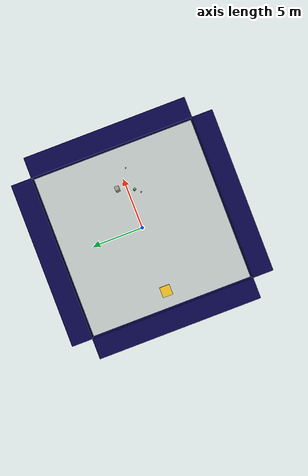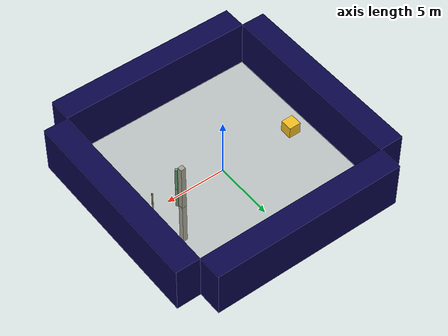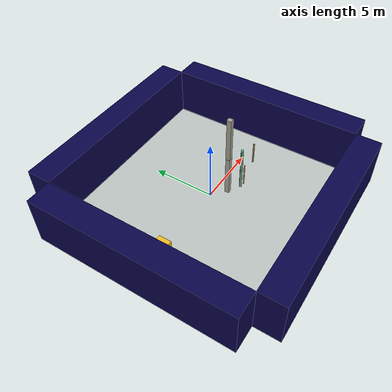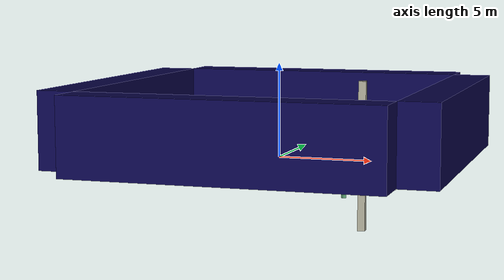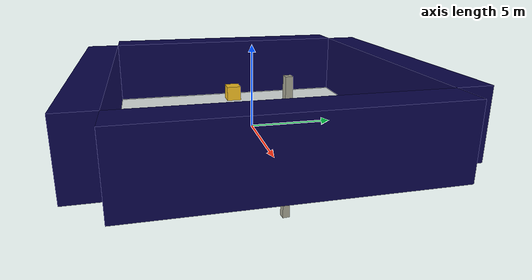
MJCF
<mujoco model="unnamed_model">
  <default>
    <default class="/" />
    <default class="border/" />
    <default class="border_1/" />
    <default class="border_2/" />
    <default class="border_3/" />
    <default class="light/" />
    <default class="agent/" />
    <default class="apple0/" />
    <default class="apple1/" />
    <default class="stone/" />
    <default class="stone_1/" />
  </default>
  <worldbody>
    <body name="border/">
      <body name="border/border" pos="0 9 2">
        <geom name="border/border_geom" class="border/" type="box" size="8.0 1.0 2.0" rgba="0.035 0.016 0.29 1.0" />
      </body>
    </body>
    <body name="border_1/">
      <body name="border_1/border" pos="0 -9 2">
        <geom name="border_1/border_geom" class="border_1/" type="box" size="8.0 1.0 2.0" rgba="0.035 0.016 0.29 1.0" />
      </body>
    </body>
    <body name="border_2/">
      <body name="border_2/border" pos="9 0 2">
        <geom name="border_2/border_geom" class="border_2/" type="box" size="1.0 8.0 2.0" rgba="0.035 0.016 0.29 1.0" />
      </body>
    </body>
    <body name="border_3/">
      <body name="border_3/border" pos="-9 0 2">
        <geom name="border_3/border_geom" class="border_3/" type="box" size="1.0 8.0 2.0" rgba="0.035 0.016 0.29 1.0" />
      </body>
    </body>
    <body name="light/">
      <body name="light/light" pos="0 0 15">
        <geom name="light/light_geom" class="light/" size="0.5" rgba="1.0 1.0 1.0 0.0" />
        <light name="light//unnamed_light_0" class="light/" />
      </body>
    </body>
    <body euler="0 0 270.07648702246553" name="agent/" pos="-6.4000000000000004 0 0.5">
      <joint name="agent/boxagent_freeJoint/" class="/" type="free" />
      <body name="agent/agent" pos="0 0 0" euler="0 0 0">
        <geom name="agent/boxagent_geom" class="agent/" type="box" size="0.5 0.5 0.5" rgba="0.949 0.7451 0.1333 1.0" euler="0 0 0" />
        <camera name="agent/boxagent_camera" class="agent/" fovy="90" pos="0 0 0.25" euler="-90 180 0" />
      </body>
    </body>
    <body name="apple0/">
      <body name="apple0/apple0" pos="4.3107499999999996 0.8926999999999996 0.10000000000000001" euler="0 0 3.4741761944970904">
        <geom name="apple0/apple_geom" class="apple0/" type="box" size="0.2 0.2 4.0" rgba="0.6470588235294118 0.6392156862745098 0.5686274509803921 1.0" />
      </body>
    </body>
    <body name="apple1/">
      <body name="apple1/apple1" pos="3.7025999999999999 -0.64499999999999957 0.10000000000000001" euler="0 0 -147.4514066939328">
        <geom name="apple1/apple_geom" class="apple1/" type="box" size="0.1 0.1 2.0" rgba="0.396078431372549 0.6705882352941176 0.48627450980392156 1.0" />
      </body>
    </body>
    <body name="stone/">
      <body name="stone/stone" pos="3.25495 -1.1548999999999996 0.10000000000000001" euler="0 0 -61.451829255429899">
        <geom name="stone/stone_geom" class="stone/" type="box" size="0.05 0.05 1.0" rgba="0.6980392156862745 0.6 0.43137254901960786 1.0" />
      </body>
    </body>
    <body name="stone_1/">
      <body name="stone_1/stone" pos="5.9242999999999997 -0.56599999999999984 0.10000000000000001" euler="0 0 67.810615816547823">
        <geom name="stone_1/stone_geom" class="stone_1/" type="box" size="0.05 0.05 1.0" rgba="0.6980392156862745 0.6 0.43137254901960786 1.0" />
      </body>
    </body>
    <geom name="base_plane" class="/" type="plane" size="8 8 0.10000000000000001" />
  </worldbody>
</mujoco>
